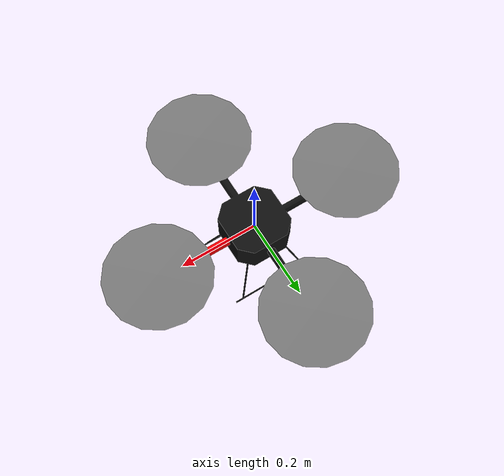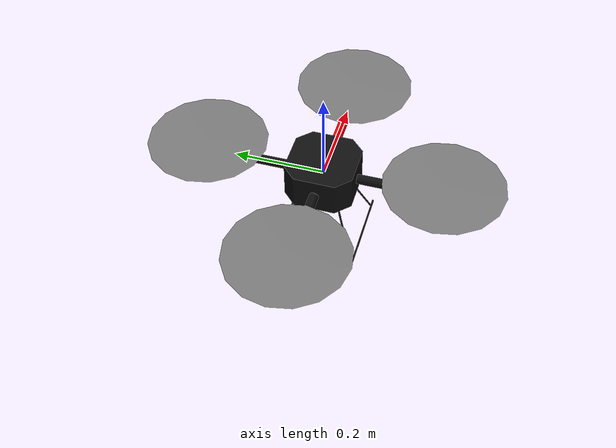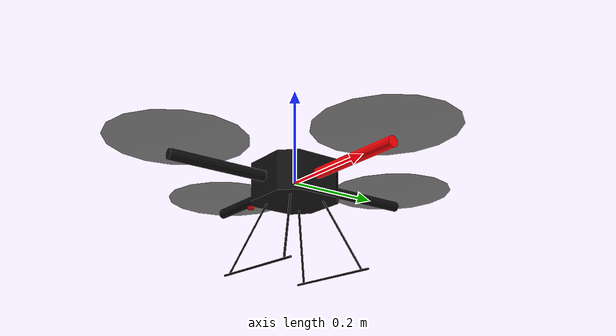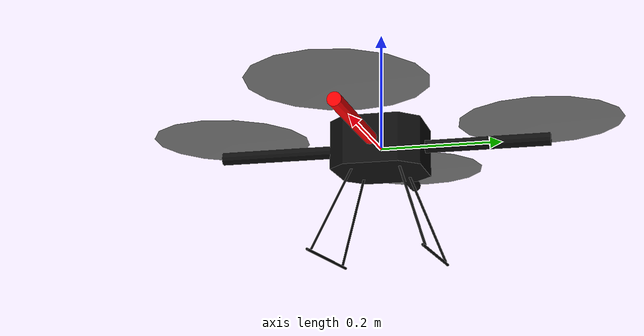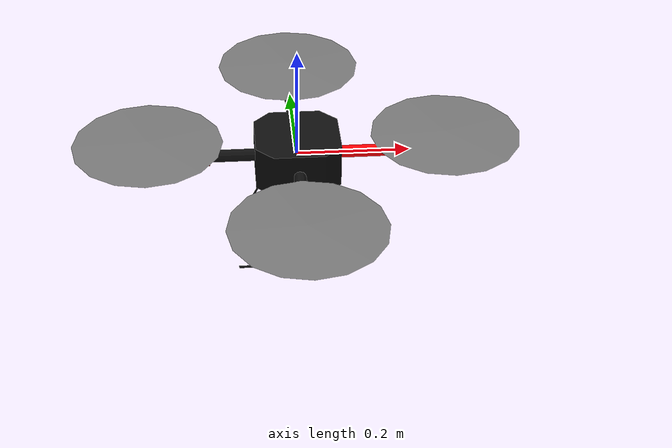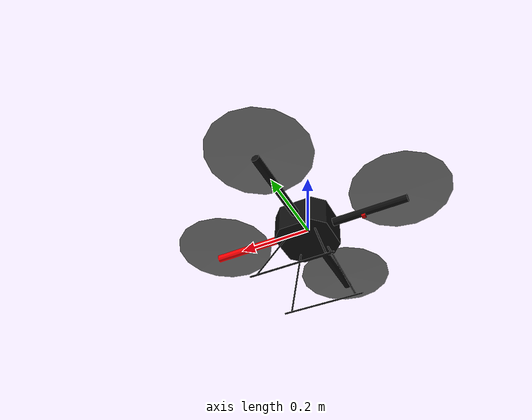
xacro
<?xml version="1.0"?>

<robot
  name="quadrotor"
  xmlns:xacro="http://www.ros.org/wiki/xacro"
>

    <!-- Included URDF Files -->
    <xacro:include filename="$(find hector_quadrotor_description)/urdf/quadrotor_base.urdf.xacro" />

    <!-- Instantiate quadrotor_base_macro once (has no parameters atm) -->
    <xacro:quadrotor_base_macro />

</robot>

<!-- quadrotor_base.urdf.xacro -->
<robot xmlns:xacro="http://www.ros.org/wiki/xacro">

  <xacro:include filename="$(find hector_sensors_description)/urdf/sonar_sensor.urdf.xacro" />
  <xacro:property name="pi" value="3.1415926535897931" />

  <!-- Main quadrotor link -->
  <xacro:macro name="quadrotor_base_macro">
    <link name="base_link">
      <inertial>
        <mass value="1.477" />
        <origin xyz="0 0 0" />
        <inertia ixx="0.01152" ixy="0.0" ixz="0.0" iyy="0.01152" iyz="0.0" izz="0.0218" />
      </inertial>

      <visual>
        <origin xyz="0 0 0" rpy="0 0 0" />
        <geometry>
          <mesh filename="package://hector_quadrotor_description/meshes/quadrotor/quadrotor_base.dae"/>
        </geometry>
      </visual>

      <collision>
        <origin xyz="0 0 0" rpy="0 0 0" />
        <geometry>
          <mesh filename="package://hector_quadrotor_description/meshes/quadrotor/quadrotor_base.stl"/>
        </geometry>
      </collision>
    </link>

    <!-- Sonar height sensor -->
    <xacro:sonar_sensor name="sonar" parent="base_link" ros_topic="sonar_height" update_rate="10" min_range="0.03" max_range="3.0" field_of_view="${40*pi/180}" ray_count="3">
      <origin xyz="-0.16 0.0 -0.012" rpy="0 ${90*pi/180} 0"/>
    </xacro:sonar_sensor>

  </xacro:macro>
</robot>

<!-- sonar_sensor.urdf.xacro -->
<robot xmlns:sensor="http://playerstage.sourceforge.net/gazebo/xmlschema/#sensor"
xmlns:controller="http://playerstage.sourceforge.net/gazebo/xmlschema/#controller"
xmlns:interface="http://playerstage.sourceforge.net/gazebo/xmlschema/#interface"
xmlns:xacro="http://ros.org/wiki/xacro"
>
  <xacro:macro name="sonar_sensor" params="name parent *origin ros_topic update_rate min_range max_range field_of_view ray_count">
    <joint name="${name}_joint" type="fixed">
      <xacro:insert_block name="origin" />
      <parent link="${parent}"/>
      <child link="${name}_link"/>
    </joint>

    <link name="${name}_link">
      <inertial>
        <mass value="0.001" />
        <origin xyz="0 0 0" rpy="0 0 0" />
        <inertia ixx="0.000000017" ixy="0" ixz="0" iyy="0.000000017" iyz="0" izz="0.000000017" />
      </inertial>
      <visual>
        <origin xyz="0 0 0" rpy="0 0 0" />
        <geometry>
          <box size="0.01 0.01 0.01" />
        </geometry>
        <material name="Red">
          <color rgba="0.8 0.0 0.0 1"/>
        </material>
      </visual>
      <collision>
        <origin xyz="0 0 0" rpy="0 0 0" />
        <geometry>
          <box size="0.01 0.01 0.01" />
        </geometry>
      </collision>
    </link>

    <gazebo reference="${name}_link">
      <sensor:ray name="${name}">

        <rayCount>${ray_count}</rayCount>
        <rangeCount>${ray_count}</rangeCount>
        <verticalRayCount>${ray_count}</verticalRayCount>
        <verticalRangeCount>${ray_count}</verticalRangeCount>

        <minAngle>-${field_of_view/2}</minAngle>
        <verticalMinAngle>-${field_of_view/2}</verticalMinAngle>
        <maxAngle>${field_of_view/2}</maxAngle>
        <verticalMaxAngle>${field_of_view/2}</verticalMaxAngle>

        <minRange>${min_range}</minRange>
        <maxRange>${max_range}</maxRange>
        <resRange>0.01</resRange>

        <updateRate>${update_rate}</updateRate>

        <controller:hector_gazebo_ros_sonar name="gazebo_ros_${name}_controller" plugin="libhector_gazebo_ros_sonar.so">
          <gaussianNoise>0.005</gaussianNoise>
          <alwaysOn>true</alwaysOn>
          <updateRate>${update_rate}</updateRate>
          <topicName>${ros_topic}</topicName>
          <frameName>/${name}_link</frameName>
        </controller:hector_gazebo_ros_sonar>
      </sensor:ray>
    </gazebo>
  </xacro:macro>
</robot>
